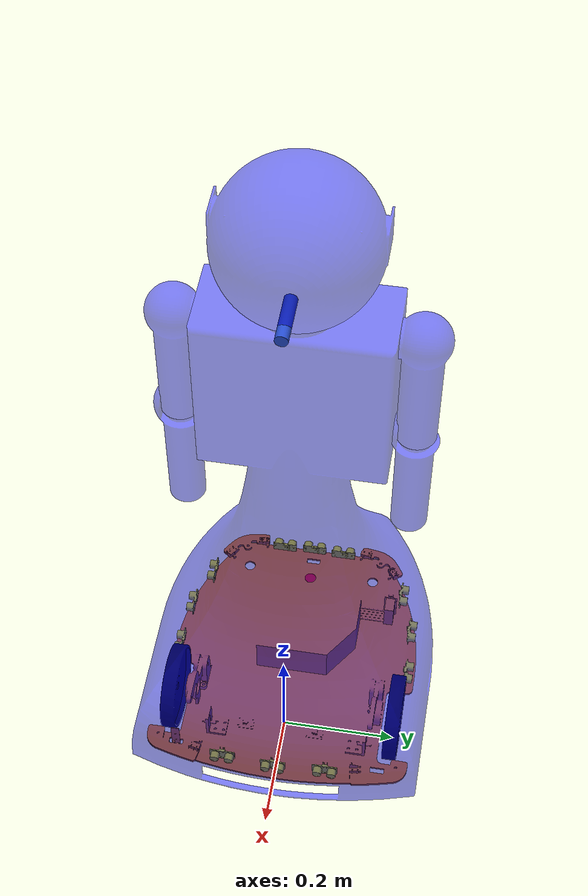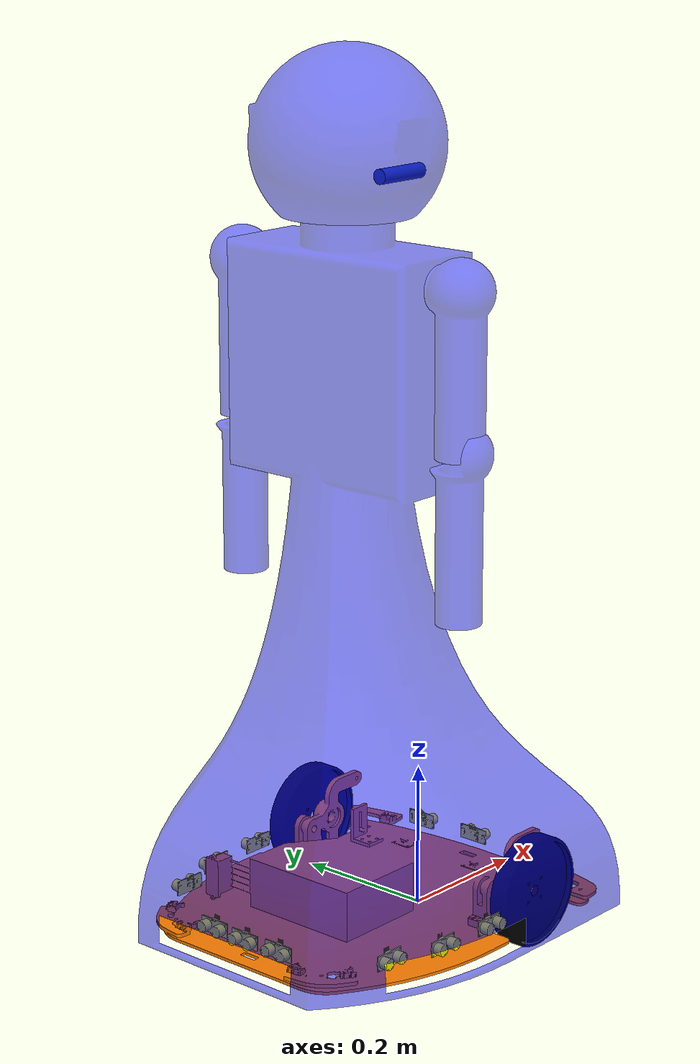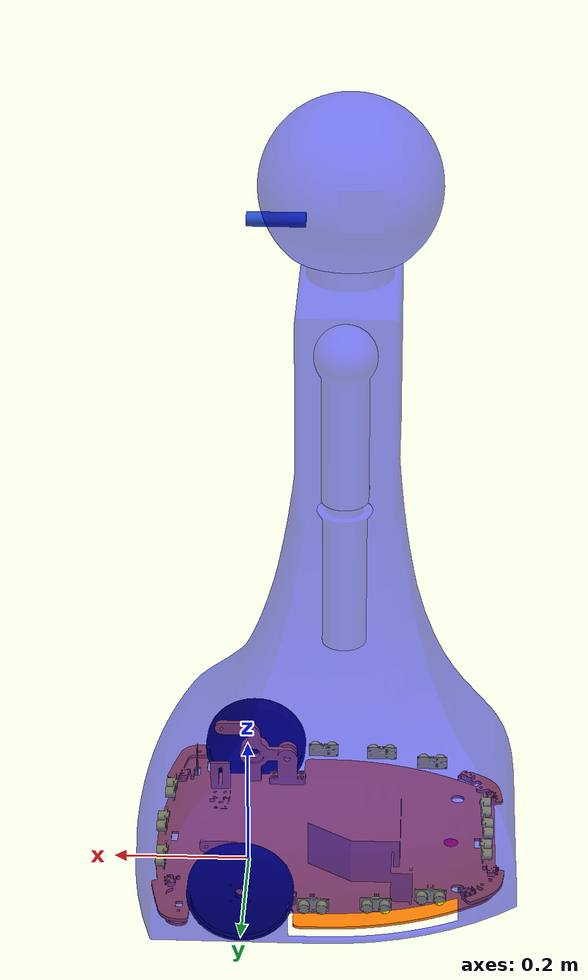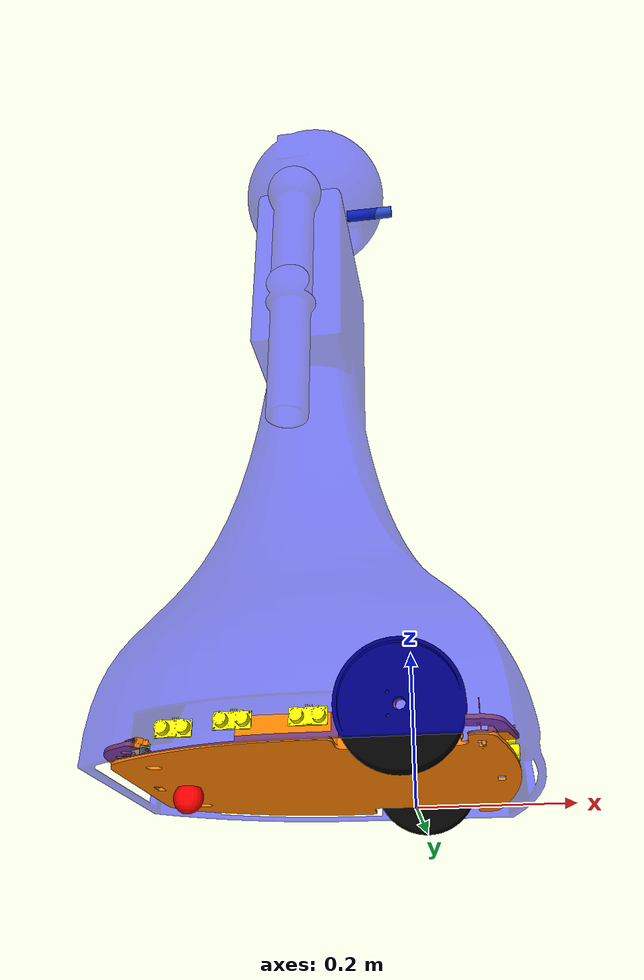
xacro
<?xml version="1.0"?>
<!--
   Created Or Edited on: 23/09/2015
   Author: Zach
           qoogood1234@gmail.com
   Edited on: 29/09/2015
   Author: Dott. Antonio Mauro Galiano
 	   antoniomauro.galiano@gmail.com
-->
<robot xmlns:xacro="http://www.ros.org/wiki/xacro" name="andbot_wide">
  <xacro:property name="PI" value="3.1415926535897931"/>
  <xacro:property name="length_wheel" value="0.0254"/>
  <xacro:property name="radius_wheel" value="0.076"/>
  <xacro:property name="distance_between_wheels" value="0.3996"/>
  <xacro:property name="height_wheels_from_base" value="0.0392"/>

 <arg name="gui" value="true"/>
  <!-- Base footprint link-->
  <link name="base_footprint"/>

<!-- Base link -->
  <link name="base_link">
    <collision>
      <origin xyz="0 0 ${radius_wheel-height_wheels_from_base}" rpy="0 0 0"/>
      <geometry>
        <mesh filename="package://hyperlync_robot/robot_description/mesh/base_part.STL"/>
      </geometry>
    </collision>
    <visual>
      <origin xyz="0 0 ${radius_wheel-height_wheels_from_base}" rpy="0 0 0"/>
      <geometry>
        <mesh filename="package://hyperlync_robot/robot_description/mesh/base_part.STL"/>
      </geometry>
       <material name="Orange">
         <color rgba="1 0.5 0 1"/>
       </material>
    </visual>
    <inertial>
      <origin xyz="0 0 0.07" rpy="0 0 0"/>
      <mass value="50"/>
      <inertia ixx="0.248" ixy="0" ixz="0" iyy="0.748" iyz="0" izz="0.748"/>
    </inertial>
  </link>
  <gazebo reference="base_link">
    <material>Gazebo/Orange</material>
  </gazebo>

  <!-- Base footprint link / Base link joint -->
  <joint name="base_joint" type="fixed">
    <parent link="base_footprint"/>
    <child link="base_link"/>
  </joint>

   <!-- Caster wheel link -->
  <link name="caster_wheel">
    <collision>
      <origin xyz="0 0 0" rpy="0 0 0"/>
      <geometry>
        <sphere radius="0.02"/>
      </geometry>
    </collision>
    <visual>
      <origin xyz="0 0 0" rpy="0 0 0"/>
      <geometry>
        <sphere radius="0.02"/>
      </geometry>
       <material name="White">
         <color rgba="1 0 0 1"/>
       </material>
    </visual>
    <inertial>
      <origin xyz="0 0 0" rpy="0 0 0"/>
      <mass value="25"/>
      <inertia ixx="0.0098" ixy="0" ixz="0" iyy="0.0098" iyz="0" izz="0.0098"/>
    </inertial>
  </link>
  <gazebo reference="caster_wheel">
    <mu1>0.04</mu1>
    <mu2>0.04</mu2>
    <material>Gazebo/White</material>
  </gazebo>

  <!-- Base link / Caster wheel joint -->
  <joint name="caster_joint" type="fixed">
    <parent link="base_link"/>
    <child link="caster_wheel"/>
    <origin xyz="-0.3 0 0.02" rpy="0 0 0"/>
  </joint>

<!-- Body link -->
  <link name="body_link">
    <collision>
      <origin xyz="0 0 0" rpy="0 0 0"/>
      <geometry>
        <mesh filename="package://hyperlync_robot/robot_description/mesh/fake_body.STL"/>
      </geometry>
    </collision>
    <visual>
      <origin xyz="0 0 0" rpy="0 0 0"/>
      <geometry>
        <mesh filename="package://hyperlync_robot/robot_description/mesh/fake_body.STL"/>
      </geometry>
       <material name="Blue">
       </material>
    </visual>
    <inertial>
      <origin xyz="0 0 0.00" rpy="0 0 0"/>
      <mass value="50"/>
      <inertia ixx="0.248" ixy="0" ixz="0" iyy="0.248" iyz="0" izz="0.748"/>
    </inertial>
  </link>
  <gazebo reference="body_link">
    <material>Gazebo/Blue</material>
  </gazebo>

  <!-- Base link /Body Link joint -->
  <joint name="body_joint" type="fixed">
    <parent link="base_link"/>
    <child link="body_link"/>
    <origin xyz="0 0 0.029" rpy="0 0 0"/>
  </joint>

  <!-- Head link -->
  <link name="head_link">
    <collision>
      <origin xyz="0 0 0" rpy="0 0 0"/>
      <geometry>
        <mesh filename="package://hyperlync_robot/robot_description/mesh/head.STL"/>
      </geometry>
    </collision>
    <visual>
      <origin xyz="0 0 0" rpy="0 0 0"/>
      <geometry>
        <mesh filename="package://hyperlync_robot/robot_description/mesh/head.STL"/>
      </geometry>
       <material name="Blue">
         <color rgba="0 0 1 0.5"/>
       </material>
    </visual>
    <inertial>
      <origin xyz="0 0 0" rpy="0 0 0"/>
      <mass value="50"/>
      <inertia ixx="0.248" ixy="0" ixz="0" iyy="0.248" iyz="0" izz="0.748"/>
    </inertial>
  </link>
  <gazebo reference="head_link">
    <material>Gazebo/Blue</material>
  </gazebo>

  <!-- Base link /Head Link joint -->
  <joint name="head_joint" type="continuous">
    <parent link="base_link"/>
    <child link="head_link"/>
    <origin xyz="-0.145 0 1.075" rpy="0 0 0"/>
    <axis xyz="0 0 1"/>
          <limit upper="1.57" lower="-1.57" velocity="10" effort="7"/>
	  <joint_properties damping="0.0" friction="0.0"/>
  </joint>
  <!-- Transmission for laser joint -->
  <transmission name="head_trans">
    <type>transmission_interface/SimpleTransmission</type>
    <joint name="head_joint">
      <hardwareInterface>EffortJointInterface</hardwareInterface>
    </joint>
    <actuator name="headMotor">
      <hardwareInterface>EffortJointInterface</hardwareInterface>
      <mechanicalWhiteuction>1</mechanicalWhiteuction>
    </actuator>
  </transmission>

  <!-- left_arm_link1 link -->
  <link name="left_arm_link1">
    <collision>
      <origin xyz="0 0 0" rpy="-1.5707 1.5707 0"/>
      <geometry>
        <mesh filename="package://hyperlync_robot/robot_description/mesh/arm_link1.STL"/>
      </geometry>
    </collision>
    <visual>
      <origin xyz="0 0 0" rpy="-1.5707 1.5707 0"/>
      <geometry>
        <mesh filename="package://hyperlync_robot/robot_description/mesh/arm_link1.STL"/>
      </geometry>
       <material name="Blue">
         <color rgba="0 0 1 0.5"/>
       </material>
    </visual>
    <inertial>
      <origin xyz="0 0 0.00" rpy="0 0 0"/>
      <mass value="50"/>
      <inertia ixx="0.148" ixy="0" ixz="0" iyy="0.148" iyz="0" izz="0.748"/>
    </inertial>
  </link>
  <gazebo reference="left_arm_link1">
    <material>Gazebo/Blue</material>
  </gazebo>

  <!-- Base link /left_arm_link1 Link joint -->
  <joint name="left_arm_link1_joint" type="fixed">
    <parent link="base_link"/>
    <child link="left_arm_link1"/>
    <origin xyz="-0.145 0.185 0.909" rpy="0 0 0"/>
  </joint>

  <!-- Left left_arm_link2 link -->
  <link name="left_arm_link2">
    <collision>
      <origin xyz="0 0 0" rpy="-1.5707 1.5707 0"/>
      <geometry>
        <mesh filename="package://hyperlync_robot/robot_description/mesh/arm_link2.STL"/>
      </geometry>
    </collision>
    <visual>
      <origin xyz="0 0 0" rpy="-1.5707 1.5707 0"/>
      <geometry>
        <mesh filename="package://hyperlync_robot/robot_description/mesh/arm_link2.STL"/>
      </geometry>
       <material name="Blue">
         <color rgba="0 0 1 0.5"/>
       </material>
    </visual>
    <inertial>
      <origin xyz="0 0 0.00" rpy="0 0 0"/>
      <mass value="50"/>
      <inertia ixx="0.148" ixy="0" ixz="0" iyy="0.148" iyz="0" izz="0.748"/>
    </inertial>
  </link>
  <gazebo reference="left_arm_link2">
    <material>Gazebo/Blue</material>
  </gazebo>

  <!-- Base link /Left_arm_link2 Link joint -->
  <joint name="left_arm_link2_joint" type="fixed">
    <parent link="left_arm_link1"/>
    <child link="left_arm_link2"/>
    <origin xyz="0 0 -0.205" rpy="0 0 0"/>
  </joint>

  <!-- right_arm_link1 link -->
  <link name="right_arm_link1">
    <collision>
      <origin xyz="0 0 0" rpy="1.57 1.5707 0"/>
      <geometry>
        <mesh filename="package://hyperlync_robot/robot_description/mesh/arm_link1.STL"/>
      </geometry>
    </collision>
    <visual>
      <origin xyz="0 0 0" rpy="1.57 1.5707 0"/>
      <geometry>
        <mesh filename="package://hyperlync_robot/robot_description/mesh/arm_link1.STL"/>
      </geometry>
       <material name="Blue">
         <color rgba="0 0 1 0.5"/>
       </material>
    </visual>
    <inertial>
      <origin xyz="0 0 0.00" rpy="0 0 0"/>
      <mass value="50"/>
      <inertia ixx="0.148" ixy="0" ixz="0" iyy="0.148" iyz="0" izz="0.748"/>
    </inertial>
  </link>
  <gazebo reference="right_arm_link1">
    <material>Gazebo/Blue</material>
  </gazebo>

  <!-- Base link /Right arm_link1 Link joint -->
  <joint name="right_arm_link1_joint" type="fixed">
    <parent link="base_link"/>
    <child link="right_arm_link1"/>
    <origin xyz="-0.145 -0.185 0.909" rpy="0 0 0"/>
  </joint>

  <!-- right_arm_link2 link -->
  <link name="right_arm_link2">
    <collision>
      <origin xyz="0 0 0" rpy="-1.5707 1.5707 3.14"/>
      <geometry>
        <mesh filename="package://hyperlync_robot/robot_description/mesh/arm_link2.STL"/>
      </geometry>
    </collision>
    <visual>
      <origin xyz="0 0 0" rpy="-1.5707 1.5707 0"/>
      <geometry>
        <mesh filename="package://hyperlync_robot/robot_description/mesh/arm_link2.STL"/>
      </geometry>
       <material name="Blue">
         <color rgba="0 0 1 0.5"/>
       </material>
    </visual>
    <inertial>
      <origin xyz="0 0 0.00" rpy="0 0 0"/>
      <mass value="50"/>
      <inertia ixx="0.148" ixy="0" ixz="0" iyy="0.148" iyz="0" izz="0.748"/>
    </inertial>
  </link>
  <gazebo reference="right_arm_link2">
    <material>Gazebo/Blue</material>
  </gazebo>

  <!-- Base link /right_arm_link2 Link joint -->
  <joint name="right_arm_link2_joint" type="fixed">
    <parent link="right_arm_link1"/>
    <child link="right_arm_link2"/>
    <origin xyz="0 0 -0.205" rpy="0 0 0"/>
  </joint>

  <!-- Base link / Laser link joint -->
  <joint name="laser_joint" type="fixed">
    <parent link="head_link"/>
    <child link="laser"/>
    <origin xyz="0.1 0 -0.05" rpy="0 0 0"/>
  </joint>

  <!-- Laser link -->
  <link name="laser">
    <collision>
      <origin xyz="0 0 0" rpy="0 1.57 0"/>
      <geometry>
        <cylinder length="0.08" radius="0.01"/>
      </geometry>
    </collision>
    <visual>
      <origin xyz="0 0 0" rpy="0 1.57 0"/>
      <geometry>
        <cylinder length="0.08" radius="0.01"/>
      </geometry>
    </visual>
    <inertial>
      <mass value="2"/>
      <origin xyz="0 0 0" rpy="0 0 0"/>
      <inertia ixx="1e-6" ixy="0" ixz="0" iyy="1e-6" iyz="0" izz="0.01"/>
    </inertial>
  </link>
  <gazebo reference="laser">
    <mu1 value="5.0"/>
    <mu2 value="5.0"/>
    <kp value="10000000.0"/>
    <kd value="1.0"/>
  </gazebo>

  <!-- Left wheel link -->
  <link name="left_wheel">
    <collision>
      <origin xyz="0 0 0" rpy="0 1.570795 1.570795"/>
      <geometry>
        <mesh filename="package://hyperlync_robot/robot_description/mesh/wheel-D152_SMALL.STL"/>
      </geometry>
    </collision>
    <visual>
      <origin xyz="0 0 0" rpy="0 1.570795 1.570795"/>
      <geometry>
        <mesh filename="package://hyperlync_robot/robot_description/mesh/wheel-D152_SMALL.STL"/>
      </geometry>
       <material name="Black">
         <color rgba="0 0 0 1"/>
       </material>
    </visual>
    <inertial>
      <origin xyz="0 0 0" rpy="0 1.570795 1.570795"/>
      <mass value="5"/>
      <inertia ixx="0.0135" ixy="0" ixz="0" iyy="0.0135" iyz="0" izz="0.025"/>
    </inertial>
  </link>
  <gazebo reference="left_wheel">
    <mu1 value="2.0"/>
    <mu2 value="2.0"/>
    <kp value="10000000.0"/>
    <kd value="1.0"/>
    <material>Gazebo/Black</material>
  </gazebo>

  <!-- Base link / Left wheel link joint -->
  <joint name="left_wheel_hinge" type="continuous">
    <parent link="base_link"/>
    <child link="left_wheel"/>
    <origin rpy="0 0 0" xyz="0 0.1998 0.076"/>

    <axis xyz="0 1 0" rpy="0 0 0"/>
    <limit effort="100" velocity="100"/>
    <joint_properties damping="0.0" friction="0.0"/>
  </joint>
  <!-- Left wheel transmission -->
  <transmission name="left_trans">
    <type>transmission_interface/SimpleTransmission</type>
    <joint name="left_wheel_hinge">
      <hardwareInterface>EffortJointInterface</hardwareInterface>
    </joint>
    <actuator name="leftMotor">
      <hardwareInterface>EffortJointInterface</hardwareInterface>
      <mechanicalWhiteuction>1</mechanicalWhiteuction>
    </actuator>
  </transmission>

  <!-- Right wheel link -->
  <link name="right_wheel">
    <collision>
      <origin xyz="0 0 0" rpy="0 1.570795 1.570795"/>
      <geometry>
        <mesh filename="package://hyperlync_robot/robot_description/mesh/wheel-D152_SMALL.STL"/>
      </geometry>
    </collision>
    <visual>
      <origin xyz="0 0 0" rpy="0 1.570795 1.570795"/>
      <geometry>
        <mesh filename="package://hyperlync_robot/robot_description/mesh/wheel-D152_SMALL.STL"/>
      </geometry>
       <material name="Black">
         <color rgba="0 0 0 1"/>
       </material>
    </visual>
    <inertial>
      <origin xyz="0 0 0" rpy="0 1.570795 1.570795"/>
      <mass value="5"/>
      <inertia ixx="0.0135" ixy="0" ixz="0" iyy="0.0135" iyz="0" izz="0.025"/>
    </inertial>
  </link>
  <gazebo reference="right_wheel">
    <mu1 value="2.0"/>
    <mu2 value="2.0"/>
    <kp value="10000000.0"/>
    <kd value="1.0"/>
    <material>Gazebo/Black</material>
  </gazebo>

  <!-- Base link / Right wheel link joint -->
  <joint name="right_wheel_hinge" type="continuous">
    <parent link="base_link"/>
    <child link="right_wheel"/>
    <origin rpy="0 0 0" xyz="0 -0.1998 0.076"/>

    <axis xyz="0 1 0" rpy="0 0 0"/>
    <limit effort="100" velocity="100"/>
    <joint_properties damping="0.0" friction="0.0"/>
  </joint>
  <!-- Right wheel transmission -->
  <transmission name="right_trans">
    <type>transmission_interface/SimpleTransmission</type>
    <joint name="right_wheel_hinge">
      <hardwareInterface>EffortJointInterface</hardwareInterface>
    </joint>
    <actuator name="rightMotor">
      <hardwareInterface>EffortJointInterface</hardwareInterface>
      <mechanicalWhiteuction>1</mechanicalWhiteuction>
    </actuator>
  </transmission>

<!--Sonar Link -->
  <!-- Base link / sonar1 link joint -->
  <joint name="sonar_1_fixed" type="fixed">
    <parent link="base_link"/>
    <child link="sonar_1"/>
    <origin xyz="0.12105 0 ${0.03475+0.029}"  rpy="0 0 0"/>
  </joint>

<!--Sonar Link1-->
  <link name="sonar_1">
    <collision>
      <origin xyz="0 0 0" rpy="0 0 0"/>
      <geometry>
        <mesh filename="package://hyperlync_robot/robot_description/mesh/sonar_HC_SR04.STL"/>
      </geometry>
    </collision>
    <visual>
      <origin xyz="0 0 0" rpy="0 0 0"/>
      <geometry>
        <mesh filename="package://hyperlync_robot/robot_description/mesh/sonar_HC_SR04.STL"/>
      </geometry>
       <material name="Yellow">
         <color rgba=" 1 1 0 1"/>
       </material>
    </visual>
    <inertial>
      <origin xyz="0 0 0" rpy="0 0 0"/>
      <mass value="0.1"/>
      <inertia ixx="0.0135" ixy="0" ixz="0" iyy="0.0135" iyz="0" izz="0.025"/>
    </inertial>
  </link>
  <gazebo reference="sonar_link1">
    <mu1 value="2.0"/>
    <mu2 value="2.0"/>
    <kp value="10000000.0"/>
    <kd value="1.0"/>
    <material>Gazebo/Yellow</material>
  </gazebo>

<!--Sonar Link 2-->
  <!-- Base link / sonar2 link joint -->
  <joint name="sonar_2_fixed" type="fixed">
    <parent link="base_link"/>
    <child link="sonar_2"/>
    <origin xyz="0.11561 0.09192 ${0.03475+0.029}"  rpy="0 0 0"/>
  </joint>

<!--Sonar Link2-->
  <link name="sonar_2">
    <collision>
      <origin xyz="0 0 0" rpy="0 0 0"/>
      <geometry>
        <mesh filename="package://hyperlync_robot/robot_description/mesh/sonar_HC_SR04.STL"/>
      </geometry>
    </collision>
    <visual>
      <origin xyz="0 0 0" rpy="0 0 0"/>
      <geometry>
        <mesh filename="package://hyperlync_robot/robot_description/mesh/sonar_HC_SR04.STL"/>
      </geometry>
       <material name="Yellow">
         <color rgba=" 1 1 0 1"/>
       </material>
    </visual>
    <inertial>
      <origin xyz="0 0 0" rpy="0 0 0"/>
      <mass value="0.1"/>
      <inertia ixx="0.0135" ixy="0" ixz="0" iyy="0.0135" iyz="0" izz="0.025"/>
    </inertial>
  </link>
  <gazebo reference="sonar_link2">
    <mu1 value="2.0"/>
    <mu2 value="2.0"/>
    <kp value="10000000.0"/>
    <kd value="1.0"/>
    <material>Gazebo/Yellow</material>
  </gazebo>

  <!-- Base link / sonar3 link joint -->
  <joint name="sonar_3_fixed" type="fixed">
    <parent link="base_link"/>
    <child link="sonar_3"/>
    <origin xyz="-0.10374 0.208 ${0.03475+0.029}"  rpy="0 0 1.5707"/>
  </joint>

<!--Sonar Link3-->
  <link name="sonar_3">
    <collision>
      <origin xyz="0 0 0" rpy="0 0 0"/>
      <geometry>
        <mesh filename="package://hyperlync_robot/robot_description/mesh/sonar_HC_SR04.STL"/>
      </geometry>
    </collision>
    <visual>
      <origin xyz="0 0 0" rpy="0 0 0"/>
      <geometry>
        <mesh filename="package://hyperlync_robot/robot_description/mesh/sonar_HC_SR04.STL"/>
      </geometry>
       <material name="Yellow">
         <color rgba=" 1 1 0 1"/>
       </material>
    </visual>
    <inertial>
      <origin xyz="0 0 0" rpy="0 0 0"/>
      <mass value="0.1"/>
      <inertia ixx="0.0135" ixy="0" ixz="0" iyy="0.0135" iyz="0" izz="0.025"/>
    </inertial>
  </link>
  <gazebo reference="sonar_link3">
    <mu1 value="2.0"/>
    <mu2 value="2.0"/>
    <kp value="10000000.0"/>
    <kd value="1.0"/>
    <material>Gazebo/Yellow</material>
  </gazebo>

  <!-- Base link / sonar4 link joint -->
  <joint name="sonar_4_fixed" type="fixed">
    <parent link="base_link"/>
    <child link="sonar_4"/>
    <origin xyz="-0.1931 0.20319 ${0.03475+0.029}"  rpy="0 0 1.5707"/>
  </joint>

<!--Sonar Link4-->
  <link name="sonar_4">
    <collision>
      <origin xyz="0 0 0" rpy="0 0 0"/>
      <geometry>
        <mesh filename="package://hyperlync_robot/robot_description/mesh/sonar_HC_SR04.STL"/>
      </geometry>
    </collision>
    <visual>
      <origin xyz="0 0 0" rpy="0 0 0"/>
      <geometry>
        <mesh filename="package://hyperlync_robot/robot_description/mesh/sonar_HC_SR04.STL"/>
      </geometry>
       <material name="Yellow">
         <color rgba=" 1 1 0 1"/>
       </material>
    </visual>
    <inertial>
      <origin xyz="0 0 0" rpy="0 0 0"/>
      <mass value="0.1"/>
      <inertia ixx="0.0135" ixy="0" ixz="0" iyy="0.0135" iyz="0" izz="0.025"/>
    </inertial>
  </link>
  <gazebo reference="sonar_link4">
    <mu1 value="2.0"/>
    <mu2 value="2.0"/>
    <kp value="10000000.0"/>
    <kd value="1.0"/>
    <material>Gazebo/Yellow</material>
  </gazebo>

  <!-- Base link / sonar5 link joint -->
  <joint name="sonar_5_fixed" type="fixed">
    <parent link="base_link"/>
    <child link="sonar_5"/>
    <origin xyz="-0.27047 0.17831 ${0.03475+0.029}"  rpy="0 0 1.5707"/>
  </joint>

<!--Sonar Link5-->
  <link name="sonar_5">
    <collision>
      <origin xyz="0 0 0" rpy="0 0 0"/>
      <geometry>
        <mesh filename="package://urdf_gazebo_nav/meshes/sonar_HC_SR04.STL"/>
      </geometry>
    </collision>
    <visual>
      <origin xyz="0 0 0" rpy="0 0 0"/>
      <geometry>
        <mesh filename="package://urdf_gazebo_nav/meshes/sonar_HC_SR04.STL"/>
      </geometry>
       <material name="Yellow">
         <color rgba=" 1 1 0 1"/>
       </material>
    </visual>
    <inertial>
      <origin xyz="0 0 0" rpy="0 0 0"/>
      <mass value="0.1"/>
      <inertia ixx="0.0135" ixy="0" ixz="0" iyy="0.0135" iyz="0" izz="0.025"/>
    </inertial>
  </link>
  <gazebo reference="sonar_link5">
    <mu1 value="2.0"/>
    <mu2 value="2.0"/>
    <kp value="10000000.0"/>
    <kd value="1.0"/>
    <material>Gazebo/Yellow</material>
  </gazebo>

  <!-- Base link / sonar6 link joint -->
  <joint name="sonar_6_fixed" type="fixed">
    <parent link="base_link"/>
    <child link="sonar_6"/>
    <origin xyz="-0.34542 0.05695 ${0.03475+0.029}"  rpy="0 0 3.14"/>
  </joint>

<!--Sonar Link6-->
  <link name="sonar_6">
    <collision>
      <origin xyz="0 0 0" rpy="0 0 0"/>
      <geometry>
        <mesh filename="package://hyperlync_robot/robot_description/mesh/sonar_HC_SR04.STL"/>
      </geometry>
    </collision>
    <visual>
      <origin xyz="0 0 0" rpy="0 0 0"/>
      <geometry>
        <mesh filename="package://hyperlync_robot/robot_description/mesh/sonar_HC_SR04.STL"/>
      </geometry>
       <material name="Yellow">
         <color rgba=" 1 1 0 1"/>
       </material>
    </visual>
    <inertial>
      <origin xyz="0 0 0" rpy="0 0 0"/>
      <mass value="0.1"/>
      <inertia ixx="0.0135" ixy="0" ixz="0" iyy="0.0135" iyz="0" izz="0.025"/>
    </inertial>
  </link>
  <gazebo reference="sonar_link6">
    <mu1 value="2.0"/>
    <mu2 value="2.0"/>
    <kp value="10000000.0"/>
    <kd value="1.0"/>
    <material>Gazebo/Yellow</material>
  </gazebo>

  <!-- Base link / sonar7 link joint -->
  <joint name="sonar_7_fixed" type="fixed">
    <parent link="base_link"/>
    <child link="sonar_7"/>
    <origin xyz="-0.348 0 ${0.03475+0.029}"  rpy="0 0 3.14"/>
  </joint>

<!--Sonar Link7-->
  <link name="sonar_7">
    <collision>
      <origin xyz="0 0 0" rpy="0 0 0"/>
      <geometry>
        <mesh filename="package://hyperlync_robot/robot_description/mesh/sonar_HC_SR04.STL"/>
      </geometry>
    </collision>
    <visual>
      <origin xyz="0 0 0" rpy="0 0 0"/>
      <geometry>
        <mesh filename="package://hyperlync_robot/robot_description/mesh/sonar_HC_SR04.STL"/>
      </geometry>
       <material name="Yellow">
         <color rgba=" 1 1 0 1"/>
       </material>
    </visual>
    <inertial>
      <origin xyz="0 0 0" rpy="0 0 0"/>
      <mass value="0.1"/>
      <inertia ixx="0.0135" ixy="0" ixz="0" iyy="0.0135" iyz="0" izz="0.025"/>
    </inertial>
  </link>
  <gazebo reference="sonar_link7">
    <mu1 value="2.0"/>
    <mu2 value="2.0"/>
    <kp value="10000000.0"/>
    <kd value="1.0"/>
    <material>Gazebo/Yellow</material>
  </gazebo>

  <!-- Base link / sonar8 link joint -->
  <joint name="sonar_8_fixed" type="fixed">
    <parent link="base_link"/>
    <child link="sonar_8"/>
    <origin xyz="-0.34542 -0.05695 ${0.03475+0.029}"  rpy="0 0 3.14"/>
  </joint>

<!--Sonar Link8-->
  <link name="sonar_8">
    <collision>
      <origin xyz="0 0 0" rpy="0 0 0"/>
      <geometry>
        <mesh filename="package://hyperlync_robot/robot_description/mesh/sonar_HC_SR04.STL"/>
      </geometry>
    </collision>
    <visual>
      <origin xyz="0 0 0" rpy="0 0 0"/>
      <geometry>
        <mesh filename="package://hyperlync_robot/robot_description/mesh/sonar_HC_SR04.STL"/>
      </geometry>
       <material name="Yellow">
         <color rgba=" 1 1 0 1"/>
       </material>
    </visual>
    <inertial>
      <origin xyz="0 0 0" rpy="0 0 0"/>
      <mass value="0.1"/>
      <inertia ixx="0.0135" ixy="0" ixz="0" iyy="0.0135" iyz="0" izz="0.025"/>
    </inertial>
  </link>
  <gazebo reference="sonar_link8">
    <mu1 value="2.0"/>
    <mu2 value="2.0"/>
    <kp value="10000000.0"/>
    <kd value="1.0"/>
    <material>Gazebo/Yellow</material>
  </gazebo>

  <!-- Base link / sonar9 link joint -->
  <joint name="sonar_9_fixed" type="fixed">
    <parent link="base_link"/>
    <child link="sonar_9"/>
    <origin xyz="-0.27047 -0.17831 ${0.03475+0.029}"  rpy="0 0 -1.5707"/>
  </joint>

<!--Sonar Link9-->
  <link name="sonar_9">
    <collision>
      <origin xyz="0 0 0" rpy="0 0 0"/>
      <geometry>
        <mesh filename="package://hyperlync_robot/robot_description/mesh/sonar_HC_SR04.STL"/>
      </geometry>
    </collision>
    <visual>
      <origin xyz="0 0 0" rpy="0 0 0"/>
      <geometry>
        <mesh filename="package://hyperlync_robot/robot_description/mesh/sonar_HC_SR04.STL"/>
      </geometry>
       <material name="Yellow">
         <color rgba=" 1 1 0 1"/>
       </material>
    </visual>
    <inertial>
      <origin xyz="0 0 0" rpy="0 0 0"/>
      <mass value="0.1"/>
      <inertia ixx="0.0135" ixy="0" ixz="0" iyy="0.0135" iyz="0" izz="0.025"/>
    </inertial>
  </link>
  <gazebo reference="sonar_link9">
    <mu1 value="2.0"/>
    <mu2 value="2.0"/>
    <kp value="10000000.0"/>
    <kd value="1.0"/>
    <material>Gazebo/Yellow</material>
  </gazebo>

  <!-- Base link / sonar10 link joint -->
  <joint name="sonar_10_fixed" type="fixed">
    <parent link="base_link"/>
    <child link="sonar_10"/>
    <origin xyz="-0.1931 -0.20319 ${0.03475+0.029}"  rpy="0 0 -1.5707"/>
  </joint>

<!--Sonar Link10-->
  <link name="sonar_10">
    <collision>
      <origin xyz="0 0 0" rpy="0 0 0"/>
      <geometry>
        <mesh filename="package://hyperlync_robot/robot_description/mesh/sonar_HC_SR04.STL"/>
      </geometry>
    </collision>
    <visual>
      <origin xyz="0 0 0" rpy="0 0 0"/>
      <geometry>
        <mesh filename="package://hyperlync_robot/robot_description/mesh/sonar_HC_SR04.STL"/>
      </geometry>
       <material name="Yellow">
         <color rgba=" 1 1 0 1"/>
       </material>
    </visual>
    <inertial>
      <origin xyz="0 0 0" rpy="0 0 0"/>
      <mass value="0.1"/>
      <inertia ixx="0.0135" ixy="0" ixz="0" iyy="0.0135" iyz="0" izz="0.025"/>
    </inertial>
  </link>
  <gazebo reference="sonar_link10">
    <mu1 value="2.0"/>
    <mu2 value="2.0"/>
    <kp value="10000000.0"/>
    <kd value="1.0"/>
    <material>Gazebo/Yellow</material>
  </gazebo>

  <!-- Base link / sonar11 link joint -->
  <joint name="sonar_11_fixed" type="fixed">
    <parent link="base_link"/>
    <child link="sonar_11"/>
    <origin xyz="-0.10374 -0.208 ${0.03475+0.029}"  rpy="0 0 -1.5707"/>
  </joint>

<!--Sonar Link11-->
  <link name="sonar_11">
    <collision>
      <origin xyz="0 0 0" rpy="0 0 0"/>
      <geometry>
        <mesh filename="package://hyperlync_robot/robot_description/mesh/sonar_HC_SR04.STL"/>
      </geometry>
    </collision>
    <visual>
      <origin xyz="0 0 0" rpy="0 0 0"/>
      <geometry>
        <mesh filename="package://hyperlync_robot/robot_description/mesh/sonar_HC_SR04.STL"/>
      </geometry>
       <material name="Yellow">
         <color rgba=" 1 1 0 1"/>
       </material>
    </visual>
    <inertial>
      <origin xyz="0 0 0" rpy="0 0 0"/>
      <mass value="0.1"/>
      <inertia ixx="0.0135" ixy="0" ixz="0" iyy="0.0135" iyz="0" izz="0.025"/>
    </inertial>
  </link>
  <gazebo reference="sonar_link11">
    <mu1 value="2.0"/>
    <mu2 value="2.0"/>
    <kp value="10000000.0"/>
    <kd value="1.0"/>
    <material>Gazebo/Yellow</material>
  </gazebo>

  <!-- Base link / sonar12 link joint -->
  <joint name="sonar_12_fixed" type="fixed">
    <parent link="base_link"/>
    <child link="sonar_12"/>
    <origin xyz="0.11561 -0.09192 ${0.03475+0.029}"  rpy="0 0 0"/>
  </joint>

<!--Sonar Link12-->
  <link name="sonar_12">
    <collision>
      <origin xyz="0 0 0" rpy="0 0 0"/>
      <geometry>
        <mesh filename="package://hyperlync_robot/robot_description/mesh/sonar_HC_SR04.STL"/>
      </geometry>
    </collision>
    <visual>
      <origin xyz="0 0 0" rpy="0 0 0"/>
      <geometry>
        <mesh filename="package://hyperlync_robot/robot_description/mesh/sonar_HC_SR04.STL"/>
      </geometry>
       <material name="Yellow">
         <color rgba=" 1 1 0 1"/>
       </material>
    </visual>
    <inertial>
      <origin xyz="0 0 0" rpy="0 0 0"/>
      <mass value="0.1"/>
      <inertia ixx="0.0135" ixy="0" ixz="0" iyy="0.0135" iyz="0" izz="0.025"/>
    </inertial>
  </link>
  <gazebo reference="sonar_link12">
    <mu1 value="2.0"/>
    <mu2 value="2.0"/>
    <kp value="10000000.0"/>
    <kd value="1.0"/>
    <material>Gazebo/Yellow</material>
  </gazebo>

  <!-- Gazebo ROS control plugin -->
  <gazebo>
    <plugin name="gazebo_ros_control" filename="libgazebo_ros_control.so">
      <robotNamespace>/andbot_wide</robotNamespace>
    </plugin>
  </gazebo>
  <!-- Differential drive plugin -->
  <gazebo>
    <plugin name="differential_drive_controller" filename="libgazebo_ros_diff_drive.so">
      <alwaysOn>true</alwaysOn>
      <updateRate>100</updateRate>
      <leftJoint>right_wheel_hinge</leftJoint>
      <rightJoint>left_wheel_hinge</rightJoint>
      <wheelSeparation>${distance_between_wheels}</wheelSeparation>
      <wheelDiameter>${2*radius_wheel}</wheelDiameter>
      <torque>30</torque>
      <commandTopic>andbot_wide/cmd_vel</commandTopic>
      <odometryTopic>andbot_wide/odom_diffdrive</odometryTopic>
      <odometryFrame>odom</odometryFrame>
      <robotBaseFrame>base_footprint</robotBaseFrame>
    </plugin>
  </gazebo>

<!-- Laser plugin -->
  <gazebo reference="laser">
    <mu1>1.0</mu1>
    <mu2>1.0</mu2>
    <material>Gazebo/Blue</material>
    <sensor type="gpu_ray" name="head_hokuyo_sensor">
      <pose>0 0 0 0 0 0</pose>
      <visualize>true</visualize>
      <update_rate>40</update_rate>
      <ray>
        <scan>
          <horizontal>
            <samples>720</samples>
            <resolution>1</resolution>
            <min_angle>-0.785</min_angle>
            <max_angle>0.785</max_angle>
          </horizontal>
        </scan>
        <range>
          <min>0.10</min>
          <max>30.0</max>
          <resolution>0.01</resolution>
        </range>
        <noise>
          <type>gaussian</type>
          <mean>0.0</mean>
          <stddev>0.01</stddev>
        </noise>
      </ray>
      <plugin name="gazebo_ros_head_hokuyo_controller" filename="libgazebo_ros_gpu_laser.so">
        <topicName>scan</topicName>
        <frameName>laser</frameName>
      </plugin>
    </sensor>
  </gazebo>
  <!-- Proximity sensor plugin -->
   <gazebo reference="sonar_1">
      <sensor name ="sonar1" type="ray">

  <plugin name="gazebo_ros_sonar_controller" filename ="libgazebo_ros_sonar.so">
  <topicName>range_sonar_1</topicName>
  <frameId>sonar_1</frameId>
  </plugin>
</sensor>
    </gazebo>
</robot>
